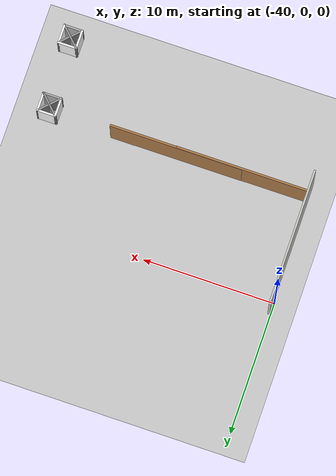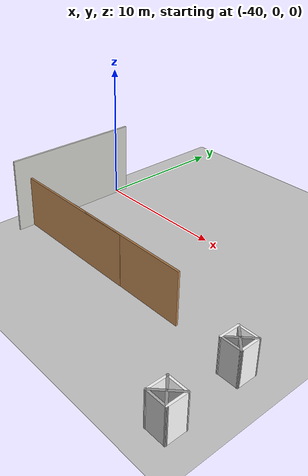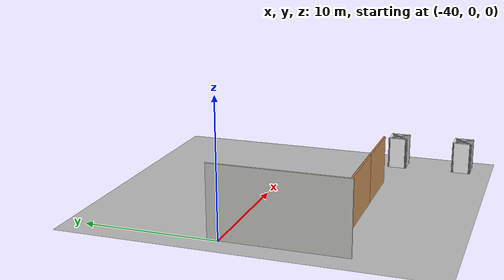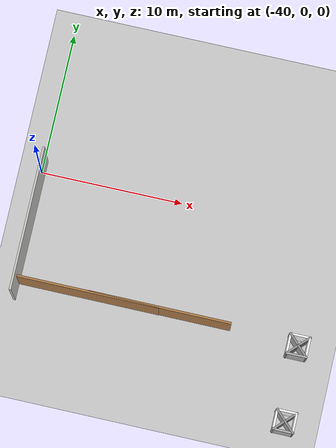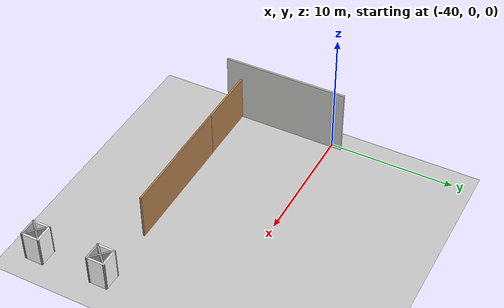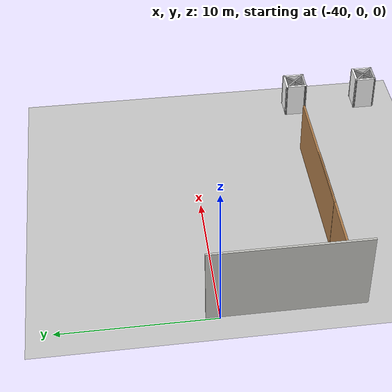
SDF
<sdf version="1.7">
 <world name="default">
  <model name="ground_plane">
   <static>1</static>
   <link name="link">
    <collision name="collision">
     <geometry><plane><normal>0 0 1</normal><size>100 100</size></plane></geometry>
     <surface>
      <contact><collide_bitmask>65535</collide_bitmask></contact>
      <friction><ode><mu>100</mu><mu2>50</mu2></ode></friction>
     </surface>
    </collision>
    <visual name="visual">
     <cast_shadows>0</cast_shadows>
     <geometry><plane><normal>0 0 1</normal><size>100 100</size></plane></geometry>
     <material>
      <script><uri>file://media/materials/scripts/gazebo.material</uri><name>Gazebo/Grey</name></script>
     </material>
    </visual>
   </link>
  </model>
  <model name="Untitled_0_clone_1">
   <link name="Wall_2">
    <pose>-0.3075 -1.8625 0 0 0 -1.5708</pose>
    <inertial>
     <mass>1</mass>
     <inertia><ixx>1</ixx><ixy>0</ixy><ixz>0</ixz><iyy>1</iyy><iyz>0</iyz><izz>1</izz></inertia>
    </inertial>
    <visual name="Wall_2_Visual">
     <pose>0 0 2.7 0 -0 0</pose>
     <geometry><box><size>10 0.15 5.4</size></box></geometry>
     <material>
      <script><uri>file://media/materials/scripts/gazebo.material</uri><name>Gazebo/CeilingTiled</name></script>
      <ambient>1 1 1 1</ambient>
      <shader type="pixel"><normal_map>__default__</normal_map></shader>
      <diffuse>1 1 1 1</diffuse>
      <specular>0 0 0 1</specular>
      <emissive>0 0 0 1</emissive>
     </material>
     <meta><layer>0</layer></meta>
    </visual>
    <collision name="Wall_2_Collision">
     <pose>0 0 2.7 0 -0 0</pose>
     <geometry><box><size>10 0.15 5.4</size></box></geometry>
     <surface>
      <friction>
       <ode><mu>1</mu><mu2>1</mu2><fdir1>0 0 0</fdir1><slip1>0</slip1><slip2>0</slip2></ode>
       <torsional>
        <coefficient>1</coefficient>
        <patch_radius>0</patch_radius>
        <surface_radius>0</surface_radius>
        <use_patch_radius>1</use_patch_radius>
        <ode><slip>0</slip></ode>
       </torsional>
      </friction>
      <bounce><restitution_coefficient>0</restitution_coefficient><threshold>1e+06</threshold></bounce>
      <contact>
       <collide_without_contact>0</collide_without_contact>
       <collide_without_contact_bitmask>1</collide_without_contact_bitmask>
       <collide_bitmask>1</collide_bitmask>
       <ode>
        <soft_cfm>0</soft_cfm>
        <soft_erp>0.2</soft_erp>
        <kp>1e+13</kp>
        <kd>1</kd>
        <max_vel>0.01</max_vel>
        <min_depth>0</min_depth>
       </ode>
       <bullet>
        <split_impulse>1</split_impulse>
        <split_impulse_penetration_threshold>-0.01</split_impulse_penetration_threshold>
        <soft_cfm>0</soft_cfm>
        <soft_erp>0.2</soft_erp>
        <kp>1e+13</kp>
        <kd>1</kd>
       </bullet>
      </contact>
     </surface>
    </collision>
   </link>
   <static>1</static>
   <pose>-39.5188 -2.27477 0 0 -0 0</pose>
  </model>
  <model name="Untitled_clone_clone_0_clone_clone_1_clone_1">
   <link name="Wall_0">
    <pose>-0.8775 -4.2975 0 0 -0 0</pose>
    <inertial>
     <mass>1</mass>
     <inertia><ixx>1</ixx><ixy>0</ixy><ixz>0</ixz><iyy>1</iyy><iyz>0</iyz><izz>1</izz></inertia>
    </inertial>
    <visual name="Wall_0_Visual">
     <pose>0 0 1.9 0 -0 0</pose>
     <geometry><box><size>10 0.15 3.8</size></box></geometry>
     <material>
      <script><uri>file://media/materials/scripts/gazebo.material</uri><name>Gazebo/Wood</name></script>
      <ambient>1 1 1 1</ambient>
      <shader type="pixel"><normal_map>__default__</normal_map></shader>
      <diffuse>1 1 1 1</diffuse>
      <specular>0.2 0.2 0.2 1</specular>
      <emissive>0 0 0 1</emissive>
     </material>
     <meta><layer>0</layer></meta>
    </visual>
    <collision name="Wall_0_Collision">
     <pose>0 0 1.9 0 -0 0</pose>
     <geometry><box><size>10 0.15 3.8</size></box></geometry>
     <surface>
      <friction>
       <ode><mu>1</mu><mu2>1</mu2><fdir1>0 0 0</fdir1><slip1>0</slip1><slip2>0</slip2></ode>
       <torsional>
        <coefficient>1</coefficient>
        <patch_radius>0</patch_radius>
        <surface_radius>0</surface_radius>
        <use_patch_radius>1</use_patch_radius>
        <ode><slip>0</slip></ode>
       </torsional>
      </friction>
      <bounce><restitution_coefficient>0</restitution_coefficient><threshold>1e+06</threshold></bounce>
      <contact>
       <collide_without_contact>0</collide_without_contact>
       <collide_without_contact_bitmask>1</collide_without_contact_bitmask>
       <collide_bitmask>1</collide_bitmask>
       <ode>
        <soft_cfm>0</soft_cfm>
        <soft_erp>0.2</soft_erp>
        <kp>1e+13</kp>
        <kd>1</kd>
        <max_vel>0.01</max_vel>
        <min_depth>0</min_depth>
       </ode>
       <bullet>
        <split_impulse>1</split_impulse>
        <split_impulse_penetration_threshold>-0.01</split_impulse_penetration_threshold>
        <soft_cfm>0</soft_cfm>
        <soft_erp>0.2</soft_erp>
        <kp>1e+13</kp>
        <kd>1</kd>
       </bullet>
      </contact>
     </surface>
    </collision>
   </link>
   <static>1</static>
   <pose>-28.9375 -3.58451 0 0 -0 0</pose>
  </model>
  <model name="Untitled_clone_clone_0_clone_clone_1_clone_2">
   <link name="Wall_0">
    <pose>-0.8775 -4.2975 0 0 -0 0</pose>
    <inertial>
     <mass>1</mass>
     <inertia><ixx>1</ixx><ixy>0</ixy><ixz>0</ixz><iyy>1</iyy><iyz>0</iyz><izz>1</izz></inertia>
    </inertial>
    <visual name="Wall_0_Visual">
     <pose>0 0 1.9 0 -0 0</pose>
     <geometry><box><size>10 0.15 3.8</size></box></geometry>
     <material>
      <script><uri>file://media/materials/scripts/gazebo.material</uri><name>Gazebo/Wood</name></script>
      <ambient>1 1 1 1</ambient>
      <shader type="pixel"><normal_map>__default__</normal_map></shader>
      <diffuse>1 1 1 1</diffuse>
      <specular>0.2 0.2 0.2 1</specular>
      <emissive>0 0 0 1</emissive>
     </material>
     <meta><layer>0</layer></meta>
    </visual>
    <collision name="Wall_0_Collision">
     <pose>0 0 1.9 0 -0 0</pose>
     <geometry><box><size>10 0.15 3.8</size></box></geometry>
     <surface>
      <friction>
       <ode><mu>1</mu><mu2>1</mu2><fdir1>0 0 0</fdir1><slip1>0</slip1><slip2>0</slip2></ode>
       <torsional>
        <coefficient>1</coefficient>
        <patch_radius>0</patch_radius>
        <surface_radius>0</surface_radius>
        <use_patch_radius>1</use_patch_radius>
        <ode><slip>0</slip></ode>
       </torsional>
      </friction>
      <bounce><restitution_coefficient>0</restitution_coefficient><threshold>1e+06</threshold></bounce>
      <contact>
       <collide_without_contact>0</collide_without_contact>
       <collide_without_contact_bitmask>1</collide_without_contact_bitmask>
       <collide_bitmask>1</collide_bitmask>
       <ode>
        <soft_cfm>0</soft_cfm>
        <soft_erp>0.2</soft_erp>
        <kp>1e+13</kp>
        <kd>1</kd>
        <max_vel>0.01</max_vel>
        <min_depth>0</min_depth>
       </ode>
       <bullet>
        <split_impulse>1</split_impulse>
        <split_impulse_penetration_threshold>-0.01</split_impulse_penetration_threshold>
        <soft_cfm>0</soft_cfm>
        <soft_erp>0.2</soft_erp>
        <kp>1e+13</kp>
        <kd>1</kd>
       </bullet>
      </contact>
     </surface>
    </collision>
   </link>
   <static>1</static>
   <pose>-33.9677 -3.60215 0 0 -0 0</pose>
  </model>
  <model name="Untitled_1_clone_3_clone_6">
   <link name="Wall_10">
    <pose>4.92197 -3.43197 0 0 -0 1.5708</pose>
    <inertial>
     <mass>1</mass>
     <inertia><ixx>1</ixx><ixy>0</ixy><ixz>0</ixz><iyy>1</iyy><iyz>0</iyz><izz>1</izz></inertia>
    </inertial>
    <visual name="Wall_10_Visual">
     <pose>0 0 1.25 0 -0 0</pose>
     <geometry><box><size>1.5 0.15 2.5</size></box></geometry>
     <material>
      <script><uri>file://media/materials/scripts/gazebo.material</uri><name>Gazebo/CoM</name></script>
      <ambient>1 1 1 1</ambient>
      <shader type="pixel"><normal_map>__default__</normal_map></shader>
      <diffuse>1 1 1 1</diffuse>
      <specular>0 0 0 1</specular>
      <emissive>0 0 0 1</emissive>
     </material>
     <meta><layer>0</layer></meta>
    </visual>
    <collision name="Wall_10_Collision">
     <pose>0 0 1.25 0 -0 0</pose>
     <geometry><box><size>1.5 0.15 2.5</size></box></geometry>
     <surface>
      <friction>
       <ode><mu>1</mu><mu2>1</mu2><fdir1>0 0 0</fdir1><slip1>0</slip1><slip2>0</slip2></ode>
       <torsional>
        <coefficient>1</coefficient>
        <patch_radius>0</patch_radius>
        <surface_radius>0</surface_radius>
        <use_patch_radius>1</use_patch_radius>
        <ode><slip>0</slip></ode>
       </torsional>
      </friction>
      <bounce><restitution_coefficient>0</restitution_coefficient><threshold>1e+06</threshold></bounce>
      <contact>
       <collide_without_contact>0</collide_without_contact>
       <collide_without_contact_bitmask>1</collide_without_contact_bitmask>
       <collide_bitmask>1</collide_bitmask>
       <ode>
        <soft_cfm>0</soft_cfm>
        <soft_erp>0.2</soft_erp>
        <kp>1e+13</kp>
        <kd>1</kd>
        <max_vel>0.01</max_vel>
        <min_depth>0</min_depth>
       </ode>
       <bullet>
        <split_impulse>1</split_impulse>
        <split_impulse_penetration_threshold>-0.01</split_impulse_penetration_threshold>
        <soft_cfm>0</soft_cfm>
        <soft_erp>0.2</soft_erp>
        <kp>1e+13</kp>
        <kd>1</kd>
       </bullet>
      </contact>
     </surface>
    </collision>
   </link>
   <link name="Wall_11">
    <pose>5.59697 -3.43197 0 0 0 -0.785398</pose>
    <visual name="Wall_11_Visual">
     <pose>0 0 1.25 0 -0 0</pose>
     <geometry><box><size>2.05919 0.15 2.5</size></box></geometry>
     <material>
      <script><uri>file://media/materials/scripts/gazebo.material</uri><name>Gazebo/Grey</name></script>
      <ambient>1 1 1 1</ambient>
      <shader type="pixel"/>
     </material>
     <meta><layer>0</layer></meta>
    </visual>
    <collision name="Wall_11_Collision">
     <pose>0 0 1.25 0 -0 0</pose>
     <geometry><box><size>2.05919 0.15 2.5</size></box></geometry>
     <surface>
      <friction>
       <ode><mu>1</mu><mu2>1</mu2><fdir1>0 0 0</fdir1><slip1>0</slip1><slip2>0</slip2></ode>
       <torsional>
        <coefficient>1</coefficient>
        <patch_radius>0</patch_radius>
        <surface_radius>0</surface_radius>
        <use_patch_radius>1</use_patch_radius>
        <ode><slip>0</slip></ode>
       </torsional>
      </friction>
      <bounce><restitution_coefficient>0</restitution_coefficient><threshold>1e+06</threshold></bounce>
      <contact>
       <collide_without_contact>0</collide_without_contact>
       <collide_without_contact_bitmask>1</collide_without_contact_bitmask>
       <collide_bitmask>1</collide_bitmask>
       <ode>
        <soft_cfm>0</soft_cfm>
        <soft_erp>0.2</soft_erp>
        <kp>1e+13</kp>
        <kd>1</kd>
        <max_vel>0.01</max_vel>
        <min_depth>0</min_depth>
       </ode>
       <bullet>
        <split_impulse>1</split_impulse>
        <split_impulse_penetration_threshold>-0.01</split_impulse_penetration_threshold>
        <soft_cfm>0</soft_cfm>
        <soft_erp>0.2</soft_erp>
        <kp>1e+13</kp>
        <kd>1</kd>
       </bullet>
      </contact>
     </surface>
    </collision>
   </link>
   <link name="Wall_13">
    <pose>5.59697 -3.43197 0 0 -0 0.785398</pose>
    <visual name="Wall_13_Visual">
     <pose>0 0 1.25 0 -0 0</pose>
     <geometry><box><size>2.05919 0.15 2.5</size></box></geometry>
     <material>
      <script><uri>file://media/materials/scripts/gazebo.material</uri><name>Gazebo/Grey</name></script>
      <ambient>1 1 1 1</ambient>
      <shader type="pixel"/>
     </material>
     <meta><layer>0</layer></meta>
    </visual>
    <collision name="Wall_13_Collision">
     <pose>0 0 1.25 0 -0 0</pose>
     <geometry><box><size>2.05919 0.15 2.5</size></box></geometry>
     <surface>
      <friction>
       <ode><mu>1</mu><mu2>1</mu2><fdir1>0 0 0</fdir1><slip1>0</slip1><slip2>0</slip2></ode>
       <torsional>
        <coefficient>1</coefficient>
        <patch_radius>0</patch_radius>
        <surface_radius>0</surface_radius>
        <use_patch_radius>1</use_patch_radius>
        <ode><slip>0</slip></ode>
       </torsional>
      </friction>
      <bounce><restitution_coefficient>0</restitution_coefficient><threshold>1e+06</threshold></bounce>
      <contact>
       <collide_without_contact>0</collide_without_contact>
       <collide_without_contact_bitmask>1</collide_without_contact_bitmask>
       <collide_bitmask>1</collide_bitmask>
       <ode>
        <soft_cfm>0</soft_cfm>
        <soft_erp>0.2</soft_erp>
        <kp>1e+13</kp>
        <kd>1</kd>
        <max_vel>0.01</max_vel>
        <min_depth>0</min_depth>
       </ode>
       <bullet>
        <split_impulse>1</split_impulse>
        <split_impulse_penetration_threshold>-0.01</split_impulse_penetration_threshold>
        <soft_cfm>0</soft_cfm>
        <soft_erp>0.2</soft_erp>
        <kp>1e+13</kp>
        <kd>1</kd>
       </bullet>
      </contact>
     </surface>
    </collision>
   </link>
   <link name="Wall_7">
    <pose>5.59697 -2.75697 0 0 -0 0</pose>
    <inertial>
     <mass>1</mass>
     <inertia><ixx>1</ixx><ixy>0</ixy><ixz>0</ixz><iyy>1</iyy><iyz>0</iyz><izz>1</izz></inertia>
    </inertial>
    <visual name="Wall_7_Visual">
     <pose>0 0 1.25 0 -0 0</pose>
     <geometry><box><size>1.5 0.15 2.5</size></box></geometry>
     <material>
      <script><uri>file://media/materials/scripts/gazebo.material</uri><name>Gazebo/CoM</name></script>
      <ambient>1 1 1 1</ambient>
      <shader type="pixel"><normal_map>__default__</normal_map></shader>
      <diffuse>1 1 1 1</diffuse>
      <specular>0 0 0 1</specular>
      <emissive>0 0 0 1</emissive>
     </material>
     <meta><layer>0</layer></meta>
    </visual>
    <collision name="Wall_7_Collision">
     <pose>0 0 1.25 0 -0 0</pose>
     <geometry><box><size>1.5 0.15 2.5</size></box></geometry>
     <surface>
      <friction>
       <ode><mu>1</mu><mu2>1</mu2><fdir1>0 0 0</fdir1><slip1>0</slip1><slip2>0</slip2></ode>
       <torsional>
        <coefficient>1</coefficient>
        <patch_radius>0</patch_radius>
        <surface_radius>0</surface_radius>
        <use_patch_radius>1</use_patch_radius>
        <ode><slip>0</slip></ode>
       </torsional>
      </friction>
      <bounce><restitution_coefficient>0</restitution_coefficient><threshold>1e+06</threshold></bounce>
      <contact>
       <collide_without_contact>0</collide_without_contact>
       <collide_without_contact_bitmask>1</collide_without_contact_bitmask>
       <collide_bitmask>1</collide_bitmask>
       <ode>
        <soft_cfm>0</soft_cfm>
        <soft_erp>0.2</soft_erp>
        <kp>1e+13</kp>
        <kd>1</kd>
        <max_vel>0.01</max_vel>
        <min_depth>0</min_depth>
       </ode>
       <bullet>
        <split_impulse>1</split_impulse>
        <split_impulse_penetration_threshold>-0.01</split_impulse_penetration_threshold>
        <soft_cfm>0</soft_cfm>
        <soft_erp>0.2</soft_erp>
        <kp>1e+13</kp>
        <kd>1</kd>
       </bullet>
      </contact>
     </surface>
    </collision>
   </link>
   <link name="Wall_8">
    <pose>6.27197 -3.43197 0 0 0 -1.5708</pose>
    <inertial>
     <mass>1</mass>
     <inertia><ixx>1</ixx><ixy>0</ixy><ixz>0</ixz><iyy>1</iyy><iyz>0</iyz><izz>1</izz></inertia>
    </inertial>
    <visual name="Wall_8_Visual">
     <pose>0 0 1.25 0 -0 0</pose>
     <geometry><box><size>1.5 0.15 2.5</size></box></geometry>
     <material>
      <script><uri>file://media/materials/scripts/gazebo.material</uri><name>Gazebo/CoM</name></script>
      <ambient>1 1 1 1</ambient>
      <shader type="pixel"><normal_map>__default__</normal_map></shader>
      <diffuse>1 1 1 1</diffuse>
      <specular>0 0 0 1</specular>
      <emissive>0 0 0 1</emissive>
     </material>
     <meta><layer>0</layer></meta>
    </visual>
    <collision name="Wall_8_Collision">
     <pose>0 0 1.25 0 -0 0</pose>
     <geometry><box><size>1.5 0.15 2.5</size></box></geometry>
     <surface>
      <friction>
       <ode><mu>1</mu><mu2>1</mu2><fdir1>0 0 0</fdir1><slip1>0</slip1><slip2>0</slip2></ode>
       <torsional>
        <coefficient>1</coefficient>
        <patch_radius>0</patch_radius>
        <surface_radius>0</surface_radius>
        <use_patch_radius>1</use_patch_radius>
        <ode><slip>0</slip></ode>
       </torsional>
      </friction>
      <bounce><restitution_coefficient>0</restitution_coefficient><threshold>1e+06</threshold></bounce>
      <contact>
       <collide_without_contact>0</collide_without_contact>
       <collide_without_contact_bitmask>1</collide_without_contact_bitmask>
       <collide_bitmask>1</collide_bitmask>
       <ode>
        <soft_cfm>0</soft_cfm>
        <soft_erp>0.2</soft_erp>
        <kp>1e+13</kp>
        <kd>1</kd>
        <max_vel>0.01</max_vel>
        <min_depth>0</min_depth>
       </ode>
       <bullet>
        <split_impulse>1</split_impulse>
        <split_impulse_penetration_threshold>-0.01</split_impulse_penetration_threshold>
        <soft_cfm>0</soft_cfm>
        <soft_erp>0.2</soft_erp>
        <kp>1e+13</kp>
        <kd>1</kd>
       </bullet>
      </contact>
     </surface>
    </collision>
   </link>
   <link name="Wall_9">
    <pose>5.59697 -4.10697 0 0 -0 3.14159</pose>
    <inertial>
     <mass>1</mass>
     <inertia><ixx>1</ixx><ixy>0</ixy><ixz>0</ixz><iyy>1</iyy><iyz>0</iyz><izz>1</izz></inertia>
    </inertial>
    <visual name="Wall_9_Visual">
     <pose>0 0 1.25 0 -0 0</pose>
     <geometry><box><size>1.5 0.15 2.5</size></box></geometry>
     <material>
      <script><uri>file://media/materials/scripts/gazebo.material</uri><name>Gazebo/CoM</name></script>
      <ambient>1 1 1 1</ambient>
      <shader type="pixel"><normal_map>__default__</normal_map></shader>
      <diffuse>0.7 0.7 0.7 1</diffuse>
      <specular>0.01 0.01 0.01 1</specular>
      <emissive>0 0 0 1</emissive>
     </material>
     <meta><layer>0</layer></meta>
    </visual>
    <collision name="Wall_9_Collision">
     <pose>0 0 1.25 0 -0 0</pose>
     <geometry><box><size>1.5 0.15 2.5</size></box></geometry>
     <surface>
      <friction>
       <ode><mu>1</mu><mu2>1</mu2><fdir1>0 0 0</fdir1><slip1>0</slip1><slip2>0</slip2></ode>
       <torsional>
        <coefficient>1</coefficient>
        <patch_radius>0</patch_radius>
        <surface_radius>0</surface_radius>
        <use_patch_radius>1</use_patch_radius>
        <ode><slip>0</slip></ode>
       </torsional>
      </friction>
      <bounce><restitution_coefficient>0</restitution_coefficient><threshold>1e+06</threshold></bounce>
      <contact>
       <collide_without_contact>0</collide_without_contact>
       <collide_without_contact_bitmask>1</collide_without_contact_bitmask>
       <collide_bitmask>1</collide_bitmask>
       <ode>
        <soft_cfm>0</soft_cfm>
        <soft_erp>0.2</soft_erp>
        <kp>1e+13</kp>
        <kd>1</kd>
        <max_vel>0.01</max_vel>
        <min_depth>0</min_depth>
       </ode>
       <bullet>
        <split_impulse>1</split_impulse>
        <split_impulse_penetration_threshold>-0.01</split_impulse_penetration_threshold>
        <soft_cfm>0</soft_cfm>
        <soft_erp>0.2</soft_erp>
        <kp>1e+13</kp>
        <kd>1</kd>
       </bullet>
      </contact>
     </surface>
    </collision>
   </link>
   <static>1</static>
   <pose>-25.4378 -9.99833 0 0 -0 0</pose>
  </model>
  <model name="Untitled_1_clone_3_clone_9">
   <link name="Wall_10">
    <pose>4.92197 -3.43197 0 0 -0 1.5708</pose>
    <inertial>
     <mass>1</mass>
     <inertia><ixx>1</ixx><ixy>0</ixy><ixz>0</ixz><iyy>1</iyy><iyz>0</iyz><izz>1</izz></inertia>
    </inertial>
    <visual name="Wall_10_Visual">
     <pose>0 0 1.25 0 -0 0</pose>
     <geometry><box><size>1.5 0.15 2.5</size></box></geometry>
     <material>
      <script><uri>file://media/materials/scripts/gazebo.material</uri><name>Gazebo/CoM</name></script>
      <ambient>1 1 1 1</ambient>
      <shader type="pixel"><normal_map>__default__</normal_map></shader>
      <diffuse>1 1 1 1</diffuse>
      <specular>0 0 0 1</specular>
      <emissive>0 0 0 1</emissive>
     </material>
     <meta><layer>0</layer></meta>
    </visual>
    <collision name="Wall_10_Collision">
     <pose>0 0 1.25 0 -0 0</pose>
     <geometry><box><size>1.5 0.15 2.5</size></box></geometry>
     <surface>
      <friction>
       <ode><mu>1</mu><mu2>1</mu2><fdir1>0 0 0</fdir1><slip1>0</slip1><slip2>0</slip2></ode>
       <torsional>
        <coefficient>1</coefficient>
        <patch_radius>0</patch_radius>
        <surface_radius>0</surface_radius>
        <use_patch_radius>1</use_patch_radius>
        <ode><slip>0</slip></ode>
       </torsional>
      </friction>
      <bounce><restitution_coefficient>0</restitution_coefficient><threshold>1e+06</threshold></bounce>
      <contact>
       <collide_without_contact>0</collide_without_contact>
       <collide_without_contact_bitmask>1</collide_without_contact_bitmask>
       <collide_bitmask>1</collide_bitmask>
       <ode>
        <soft_cfm>0</soft_cfm>
        <soft_erp>0.2</soft_erp>
        <kp>1e+13</kp>
        <kd>1</kd>
        <max_vel>0.01</max_vel>
        <min_depth>0</min_depth>
       </ode>
       <bullet>
        <split_impulse>1</split_impulse>
        <split_impulse_penetration_threshold>-0.01</split_impulse_penetration_threshold>
        <soft_cfm>0</soft_cfm>
        <soft_erp>0.2</soft_erp>
        <kp>1e+13</kp>
        <kd>1</kd>
       </bullet>
      </contact>
     </surface>
    </collision>
   </link>
   <link name="Wall_11">
    <pose>5.59697 -3.43197 0 0 0 -0.785398</pose>
    <visual name="Wall_11_Visual">
     <pose>0 0 1.25 0 -0 0</pose>
     <geometry><box><size>2.05919 0.15 2.5</size></box></geometry>
     <material>
      <script><uri>file://media/materials/scripts/gazebo.material</uri><name>Gazebo/Grey</name></script>
      <ambient>1 1 1 1</ambient>
      <shader type="pixel"/>
     </material>
     <meta><layer>0</layer></meta>
    </visual>
    <collision name="Wall_11_Collision">
     <pose>0 0 1.25 0 -0 0</pose>
     <geometry><box><size>2.05919 0.15 2.5</size></box></geometry>
     <surface>
      <friction>
       <ode><mu>1</mu><mu2>1</mu2><fdir1>0 0 0</fdir1><slip1>0</slip1><slip2>0</slip2></ode>
       <torsional>
        <coefficient>1</coefficient>
        <patch_radius>0</patch_radius>
        <surface_radius>0</surface_radius>
        <use_patch_radius>1</use_patch_radius>
        <ode><slip>0</slip></ode>
       </torsional>
      </friction>
      <bounce><restitution_coefficient>0</restitution_coefficient><threshold>1e+06</threshold></bounce>
      <contact>
       <collide_without_contact>0</collide_without_contact>
       <collide_without_contact_bitmask>1</collide_without_contact_bitmask>
       <collide_bitmask>1</collide_bitmask>
       <ode>
        <soft_cfm>0</soft_cfm>
        <soft_erp>0.2</soft_erp>
        <kp>1e+13</kp>
        <kd>1</kd>
        <max_vel>0.01</max_vel>
        <min_depth>0</min_depth>
       </ode>
       <bullet>
        <split_impulse>1</split_impulse>
        <split_impulse_penetration_threshold>-0.01</split_impulse_penetration_threshold>
        <soft_cfm>0</soft_cfm>
        <soft_erp>0.2</soft_erp>
        <kp>1e+13</kp>
        <kd>1</kd>
       </bullet>
      </contact>
     </surface>
    </collision>
   </link>
   <link name="Wall_13">
    <pose>5.59697 -3.43197 0 0 -0 0.785398</pose>
    <visual name="Wall_13_Visual">
     <pose>0 0 1.25 0 -0 0</pose>
     <geometry><box><size>2.05919 0.15 2.5</size></box></geometry>
     <material>
      <script><uri>file://media/materials/scripts/gazebo.material</uri><name>Gazebo/Grey</name></script>
      <ambient>1 1 1 1</ambient>
      <shader type="pixel"/>
     </material>
     <meta><layer>0</layer></meta>
    </visual>
    <collision name="Wall_13_Collision">
     <pose>0 0 1.25 0 -0 0</pose>
     <geometry><box><size>2.05919 0.15 2.5</size></box></geometry>
     <surface>
      <friction>
       <ode><mu>1</mu><mu2>1</mu2><fdir1>0 0 0</fdir1><slip1>0</slip1><slip2>0</slip2></ode>
       <torsional>
        <coefficient>1</coefficient>
        <patch_radius>0</patch_radius>
        <surface_radius>0</surface_radius>
        <use_patch_radius>1</use_patch_radius>
        <ode><slip>0</slip></ode>
       </torsional>
      </friction>
      <bounce><restitution_coefficient>0</restitution_coefficient><threshold>1e+06</threshold></bounce>
      <contact>
       <collide_without_contact>0</collide_without_contact>
       <collide_without_contact_bitmask>1</collide_without_contact_bitmask>
       <collide_bitmask>1</collide_bitmask>
       <ode>
        <soft_cfm>0</soft_cfm>
        <soft_erp>0.2</soft_erp>
        <kp>1e+13</kp>
        <kd>1</kd>
        <max_vel>0.01</max_vel>
        <min_depth>0</min_depth>
       </ode>
       <bullet>
        <split_impulse>1</split_impulse>
        <split_impulse_penetration_threshold>-0.01</split_impulse_penetration_threshold>
        <soft_cfm>0</soft_cfm>
        <soft_erp>0.2</soft_erp>
        <kp>1e+13</kp>
        <kd>1</kd>
       </bullet>
      </contact>
     </surface>
    </collision>
   </link>
   <link name="Wall_7">
    <pose>5.59697 -2.75697 0 0 -0 0</pose>
    <inertial>
     <mass>1</mass>
     <inertia><ixx>1</ixx><ixy>0</ixy><ixz>0</ixz><iyy>1</iyy><iyz>0</iyz><izz>1</izz></inertia>
    </inertial>
    <visual name="Wall_7_Visual">
     <pose>0 0 1.25 0 -0 0</pose>
     <geometry><box><size>1.5 0.15 2.5</size></box></geometry>
     <material>
      <script><uri>file://media/materials/scripts/gazebo.material</uri><name>Gazebo/CoM</name></script>
      <ambient>1 1 1 1</ambient>
      <shader type="pixel"><normal_map>__default__</normal_map></shader>
      <diffuse>1 1 1 1</diffuse>
      <specular>0 0 0 1</specular>
      <emissive>0 0 0 1</emissive>
     </material>
     <meta><layer>0</layer></meta>
    </visual>
    <collision name="Wall_7_Collision">
     <pose>0 0 1.25 0 -0 0</pose>
     <geometry><box><size>1.5 0.15 2.5</size></box></geometry>
     <surface>
      <friction>
       <ode><mu>1</mu><mu2>1</mu2><fdir1>0 0 0</fdir1><slip1>0</slip1><slip2>0</slip2></ode>
       <torsional>
        <coefficient>1</coefficient>
        <patch_radius>0</patch_radius>
        <surface_radius>0</surface_radius>
        <use_patch_radius>1</use_patch_radius>
        <ode><slip>0</slip></ode>
       </torsional>
      </friction>
      <bounce><restitution_coefficient>0</restitution_coefficient><threshold>1e+06</threshold></bounce>
      <contact>
       <collide_without_contact>0</collide_without_contact>
       <collide_without_contact_bitmask>1</collide_without_contact_bitmask>
       <collide_bitmask>1</collide_bitmask>
       <ode>
        <soft_cfm>0</soft_cfm>
        <soft_erp>0.2</soft_erp>
        <kp>1e+13</kp>
        <kd>1</kd>
        <max_vel>0.01</max_vel>
        <min_depth>0</min_depth>
       </ode>
       <bullet>
        <split_impulse>1</split_impulse>
        <split_impulse_penetration_threshold>-0.01</split_impulse_penetration_threshold>
        <soft_cfm>0</soft_cfm>
        <soft_erp>0.2</soft_erp>
        <kp>1e+13</kp>
        <kd>1</kd>
       </bullet>
      </contact>
     </surface>
    </collision>
   </link>
   <link name="Wall_8">
    <pose>6.27197 -3.43197 0 0 0 -1.5708</pose>
    <inertial>
     <mass>1</mass>
     <inertia><ixx>1</ixx><ixy>0</ixy><ixz>0</ixz><iyy>1</iyy><iyz>0</iyz><izz>1</izz></inertia>
    </inertial>
    <visual name="Wall_8_Visual">
     <pose>0 0 1.25 0 -0 0</pose>
     <geometry><box><size>1.5 0.15 2.5</size></box></geometry>
     <material>
      <script><uri>file://media/materials/scripts/gazebo.material</uri><name>Gazebo/CoM</name></script>
      <ambient>1 1 1 1</ambient>
      <shader type="pixel"><normal_map>__default__</normal_map></shader>
      <diffuse>1 1 1 1</diffuse>
      <specular>0 0 0 1</specular>
      <emissive>0 0 0 1</emissive>
     </material>
     <meta><layer>0</layer></meta>
    </visual>
    <collision name="Wall_8_Collision">
     <pose>0 0 1.25 0 -0 0</pose>
     <geometry><box><size>1.5 0.15 2.5</size></box></geometry>
     <surface>
      <friction>
       <ode><mu>1</mu><mu2>1</mu2><fdir1>0 0 0</fdir1><slip1>0</slip1><slip2>0</slip2></ode>
       <torsional>
        <coefficient>1</coefficient>
        <patch_radius>0</patch_radius>
        <surface_radius>0</surface_radius>
        <use_patch_radius>1</use_patch_radius>
        <ode><slip>0</slip></ode>
       </torsional>
      </friction>
      <bounce><restitution_coefficient>0</restitution_coefficient><threshold>1e+06</threshold></bounce>
      <contact>
       <collide_without_contact>0</collide_without_contact>
       <collide_without_contact_bitmask>1</collide_without_contact_bitmask>
       <collide_bitmask>1</collide_bitmask>
       <ode>
        <soft_cfm>0</soft_cfm>
        <soft_erp>0.2</soft_erp>
        <kp>1e+13</kp>
        <kd>1</kd>
        <max_vel>0.01</max_vel>
        <min_depth>0</min_depth>
       </ode>
       <bullet>
        <split_impulse>1</split_impulse>
        <split_impulse_penetration_threshold>-0.01</split_impulse_penetration_threshold>
        <soft_cfm>0</soft_cfm>
        <soft_erp>0.2</soft_erp>
        <kp>1e+13</kp>
        <kd>1</kd>
       </bullet>
      </contact>
     </surface>
    </collision>
   </link>
   <link name="Wall_9">
    <pose>5.59697 -4.10697 0 0 -0 3.14159</pose>
    <inertial>
     <mass>1</mass>
     <inertia><ixx>1</ixx><ixy>0</ixy><ixz>0</ixz><iyy>1</iyy><iyz>0</iyz><izz>1</izz></inertia>
    </inertial>
    <visual name="Wall_9_Visual">
     <pose>0 0 1.25 0 -0 0</pose>
     <geometry><box><size>1.5 0.15 2.5</size></box></geometry>
     <material>
      <script><uri>file://media/materials/scripts/gazebo.material</uri><name>Gazebo/CoM</name></script>
      <ambient>1 1 1 1</ambient>
      <shader type="pixel"><normal_map>__default__</normal_map></shader>
      <diffuse>0.7 0.7 0.7 1</diffuse>
      <specular>0.01 0.01 0.01 1</specular>
      <emissive>0 0 0 1</emissive>
     </material>
     <meta><layer>0</layer></meta>
    </visual>
    <collision name="Wall_9_Collision">
     <pose>0 0 1.25 0 -0 0</pose>
     <geometry><box><size>1.5 0.15 2.5</size></box></geometry>
     <surface>
      <friction>
       <ode><mu>1</mu><mu2>1</mu2><fdir1>0 0 0</fdir1><slip1>0</slip1><slip2>0</slip2></ode>
       <torsional>
        <coefficient>1</coefficient>
        <patch_radius>0</patch_radius>
        <surface_radius>0</surface_radius>
        <use_patch_radius>1</use_patch_radius>
        <ode><slip>0</slip></ode>
       </torsional>
      </friction>
      <bounce><restitution_coefficient>0</restitution_coefficient><threshold>1e+06</threshold></bounce>
      <contact>
       <collide_without_contact>0</collide_without_contact>
       <collide_without_contact_bitmask>1</collide_without_contact_bitmask>
       <collide_bitmask>1</collide_bitmask>
       <ode>
        <soft_cfm>0</soft_cfm>
        <soft_erp>0.2</soft_erp>
        <kp>1e+13</kp>
        <kd>1</kd>
        <max_vel>0.01</max_vel>
        <min_depth>0</min_depth>
       </ode>
       <bullet>
        <split_impulse>1</split_impulse>
        <split_impulse_penetration_threshold>-0.01</split_impulse_penetration_threshold>
        <soft_cfm>0</soft_cfm>
        <soft_erp>0.2</soft_erp>
        <kp>1e+13</kp>
        <kd>1</kd>
       </bullet>
      </contact>
     </surface>
    </collision>
   </link>
   <static>1</static>
   <pose>-25.6497 -4.75891 0 0 -0 0</pose>
  </model>
 </world>
</sdf>
